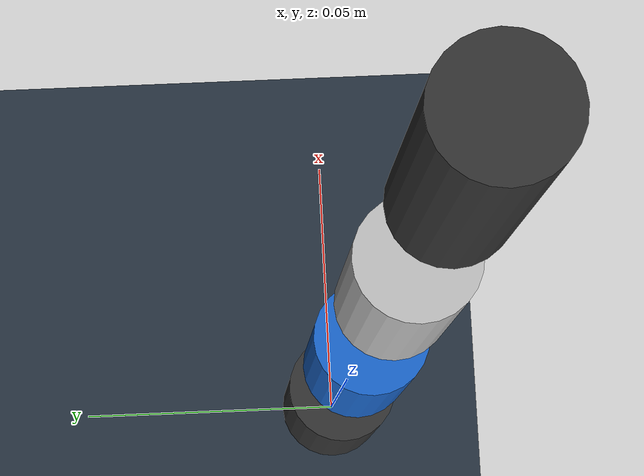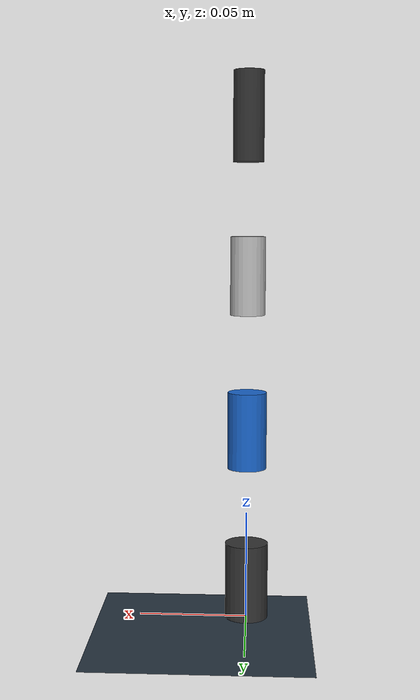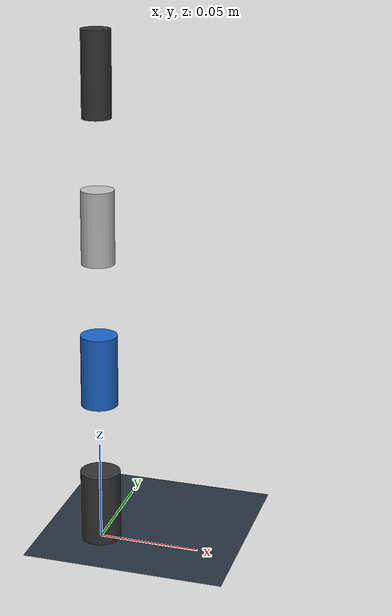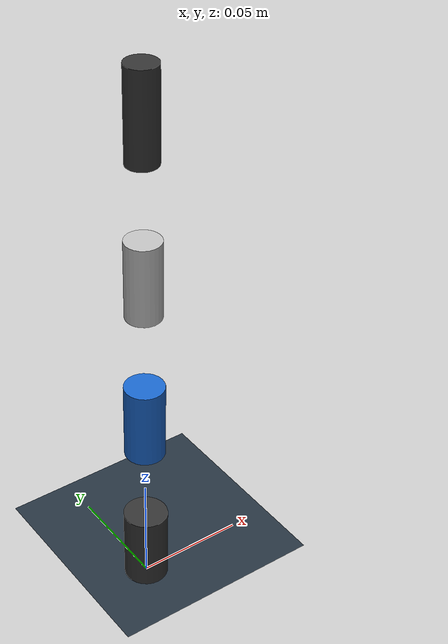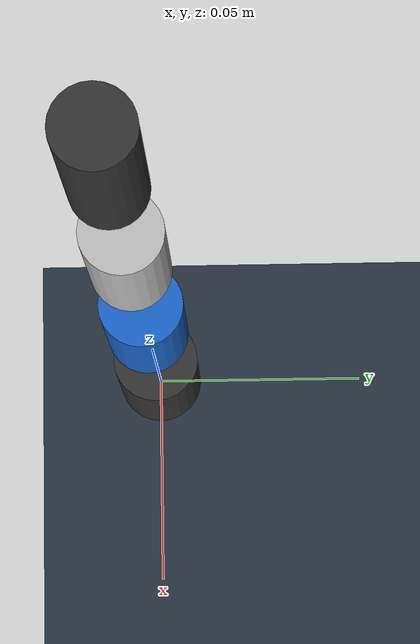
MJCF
<mujoco model="finger2">
  <compiler angle="radian" coordinate="local"/>

  <option gravity="0 0 -9.81" timestep="0.002"/>

  <asset>
    <!-- Beautiful environment textures and materials -->
    <texture type="skybox" builtin="gradient" rgb1="0.3 0.5 0.7" rgb2="0.05 0.05 0.1" width="512" height="512"/>
    <texture name="grid" type="2d" builtin="checker" rgb1="0.1 0.15 0.2" rgb2="0.2 0.25 0.3" width="300" height="300" mark="edge" markrgb="0.3 0.3 0.3"/>
    <material name="grid" texture="grid" texrepeat="2 2" texuniform="true" reflectance="0.2"/>

    <!-- Link materials -->
    <material name="dark_grey" rgba="0.2 0.2 0.2 1.0" shininess="0.5" specular="0.3"/>
    <material name="accent_blue" rgba="0.1 0.4 0.8 1.0" shininess="0.6" specular="0.5"/>
    <material name="silver" rgba="0.75 0.75 0.75 1.0" shininess="0.8" specular="0.7"/>
  </asset>

  <worldbody>
    <!-- Ground plane -->
    <geom name="floor" type="plane" size="0 0 1" pos="0 0 0" material="grid"/>

    <!-- Lighting -->
    <light name="top_light" mode="targetbody" target="link1" pos="0 0 2" dir="0 0 -1" diffuse="0.8 0.8 0.8" specular="0.3 0.3 0.3"/>
    <light name="side_light" mode="targetbody" target="link1" pos="1.5 1.5 1.5" dir="-1 -1 -1" diffuse="0.4 0.4 0.4" specular="0.1 0.1 0.1"/>

    <!-- Link 1 (Base Link) -->
    <body name="link1" pos="0 0 0.0179">
      <geom name="link1_geom" type="cylinder" size="0.01 0.0179" material="dark_grey"/>

      <!-- Joint 1 -->
      <body name="link2" pos="0 0 0.0358">
        <joint name="joint1" type="hinge" axis="0 1 0" range="-2.0 2.0" limited="true"/>
        <geom name="link2_geom" type="cylinder" size="0.009 0.0179" pos="0 0 0.0358" material="accent_blue"/>

        <!-- Joint 2 -->
        <body name="link3" pos="0 0 0.0358">
          <joint name="joint2" type="hinge" axis="0 1 0" range="-2.0 2.0" limited="true"/>
          <geom name="link3_geom" type="cylinder" size="0.008 0.0179" pos="0 0 0.0716" material="silver"/>

          <!-- Joint 3 -->
          <body name="link4" pos="0 0 0.0358">
            <joint name="joint3" type="hinge" axis="0 1 0" range="-2.0 2.0" limited="true"/>
            <geom name="link4_geom" type="cylinder" size="0.007 0.02025" pos="0 0 0.1074" material="dark_grey"/>
          </body>
        </body>
      </body>
    </body>
  </worldbody>

  <actuator>
    <!-- Position control actuators for interactive movement -->
    <position name="actuator1" joint="joint1" ctrlrange="-2.0 2.0" kp="5.0"/>
    <position name="actuator2" joint="joint2" ctrlrange="-2.0 2.0" kp="5.0"/>
    <position name="actuator3" joint="joint3" ctrlrange="-2.0 2.0" kp="5.0"/>
  </actuator>
</mujoco>
